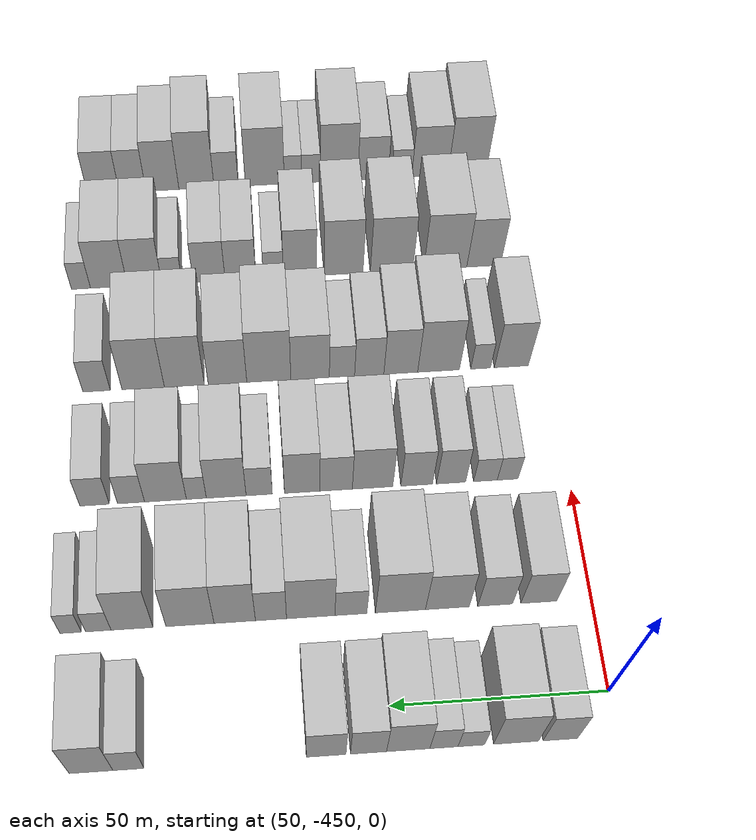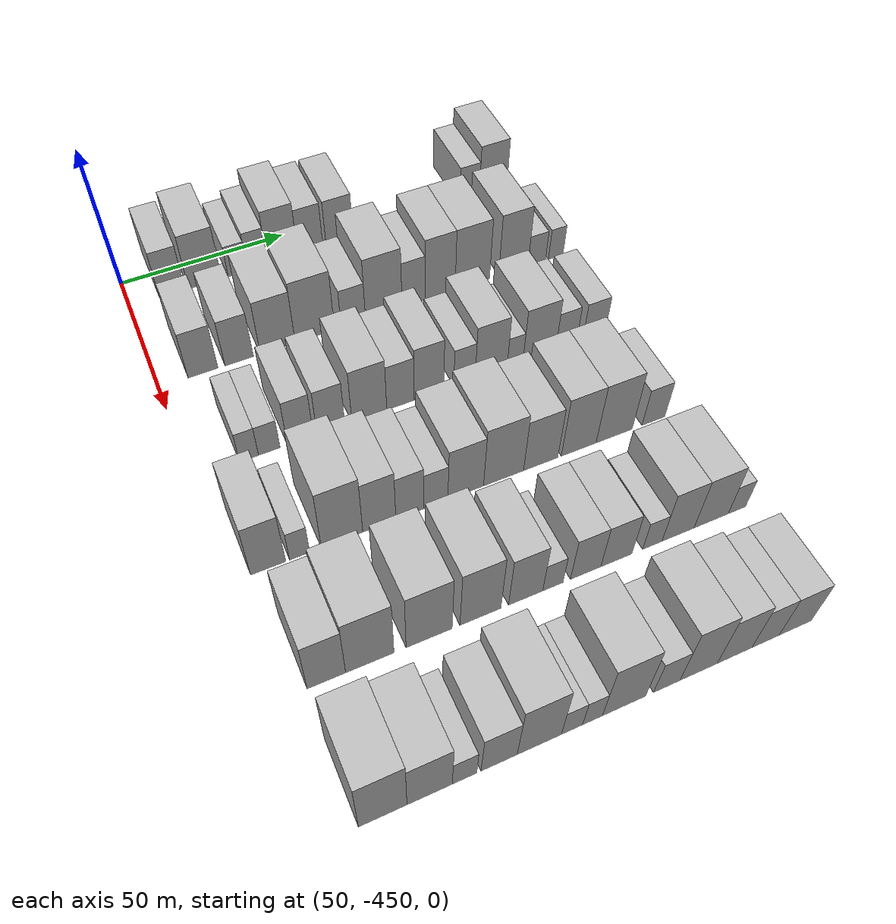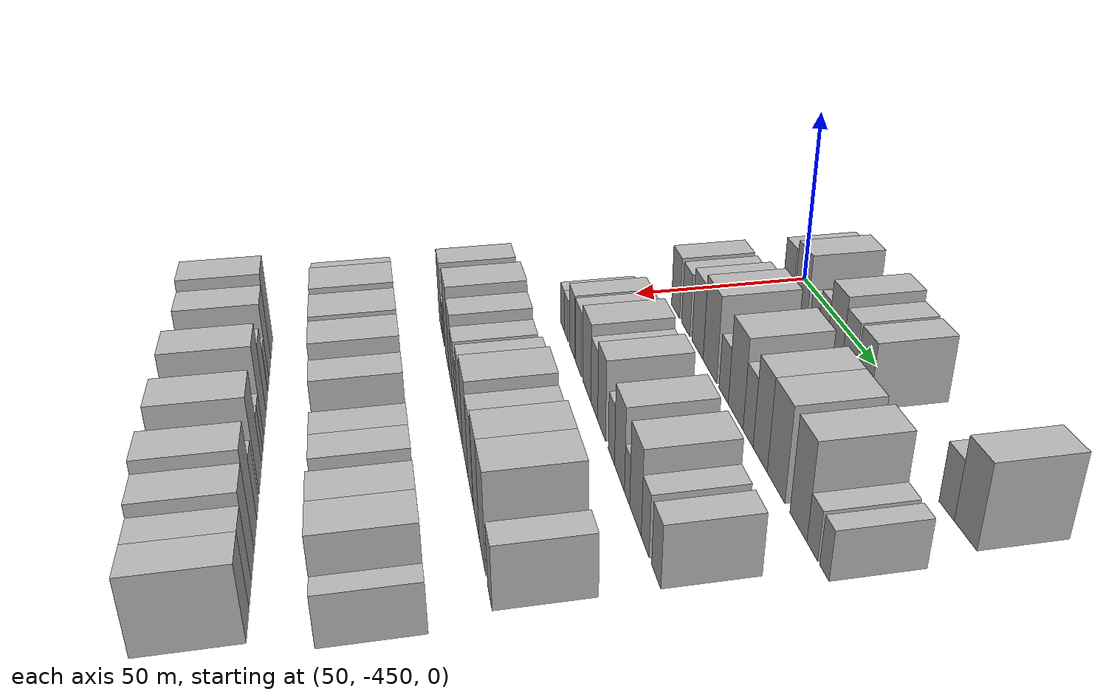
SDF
<sdf version="1.6">
 <world name="default">
  <model name="building_14">
   <static>1</static>
   <pose>50.0000 -437.2513 0 0.000000 0.000000 0.000000</pose>
   <link name="link">
    <pose>0 0 9.00 0 0 0</pose>
    <collision name="collision"><geometry><box><size>20.0000 7.7527 18.0000</size></box></geometry></collision>
    <visual name="visual">
     <cast_shadows>0</cast_shadows>
     <geometry><box><size>20.0000 7.7527 18.0000</size></box></geometry>
     <material>
      <script>
       <uri>model://HANNAS_wall/materials/scripts</uri>
       <uri>model://HANNAS_wall/materials/textures</uri>
       <name>vrc/HANNAS_wall</name>
      </script>
     </material>
    </visual>
   </link>
  </model>
  <model name="building_15">
   <static>1</static>
   <pose>50.0000 -427.3314 0 0.000000 0.000000 0.000000</pose>
   <link name="link">
    <pose>0 0 10.50 0 0 0</pose>
    <collision name="collision"><geometry><box><size>20.0000 10.0871 21.0000</size></box></geometry></collision>
    <visual name="visual">
     <cast_shadows>0</cast_shadows>
     <geometry><box><size>20.0000 10.0871 21.0000</size></box></geometry>
     <material>
      <script>
       <uri>model://HANNAS_wall/materials/scripts</uri>
       <uri>model://HANNAS_wall/materials/textures</uri>
       <name>vrc/HANNAS_wall</name>
      </script>
     </material>
    </visual>
   </link>
  </model>
  <model name="building_16">
   <static>1</static>
   <pose>50.0000 -417.3152 0 0.000000 0.000000 0.000000</pose>
   <link name="link">
    <pose>0 0 6.00 0 0 0</pose>
    <collision name="collision"><geometry><box><size>20.0000 5.9452 12.0000</size></box></geometry></collision>
    <visual name="visual">
     <cast_shadows>0</cast_shadows>
     <geometry><box><size>20.0000 5.9452 12.0000</size></box></geometry>
     <material>
      <script>
       <uri>model://HANNAS_wall/materials/scripts</uri>
       <uri>model://HANNAS_wall/materials/textures</uri>
       <name>vrc/HANNAS_wall</name>
      </script>
     </material>
    </visual>
   </link>
  </model>
  <model name="building_17">
   <static>1</static>
   <pose>50.0000 -411.2061 0 0.000000 0.000000 0.000000</pose>
   <link name="link">
    <pose>0 0 7.50 0 0 0</pose>
    <collision name="collision"><geometry><box><size>20.0000 6.2730 15.0000</size></box></geometry></collision>
    <visual name="visual">
     <cast_shadows>0</cast_shadows>
     <geometry><box><size>20.0000 6.2730 15.0000</size></box></geometry>
     <material>
      <script>
       <uri>model://HANNAS_wall/materials/scripts</uri>
       <uri>model://HANNAS_wall/materials/textures</uri>
       <name>vrc/HANNAS_wall</name>
      </script>
     </material>
    </visual>
   </link>
  </model>
  <model name="building_18">
   <static>1</static>
   <pose>50.0000 -403.2545 0 0.000000 0.000000 0.000000</pose>
   <link name="link">
    <pose>0 0 10.50 0 0 0</pose>
    <collision name="collision"><geometry><box><size>20.0000 9.6303 21.0000</size></box></geometry></collision>
    <visual name="visual">
     <cast_shadows>0</cast_shadows>
     <geometry><box><size>20.0000 9.6303 21.0000</size></box></geometry>
     <material>
      <script>
       <uri>model://HANNAS_wall/materials/scripts</uri>
       <uri>model://HANNAS_wall/materials/textures</uri>
       <name>vrc/HANNAS_wall</name>
      </script>
     </material>
    </visual>
   </link>
  </model>
  <model name="building_19">
   <static>1</static>
   <pose>50.0000 -394.4292 0 0.000000 0.000000 0.000000</pose>
   <link name="link">
    <pose>0 0 9.00 0 0 0</pose>
    <collision name="collision"><geometry><box><size>20.0000 8.0204 18.0000</size></box></geometry></collision>
    <visual name="visual">
     <cast_shadows>0</cast_shadows>
     <geometry><box><size>20.0000 8.0204 18.0000</size></box></geometry>
     <material>
      <script>
       <uri>model://HANNAS_wall/materials/scripts</uri>
       <uri>model://HANNAS_wall/materials/textures</uri>
       <name>vrc/HANNAS_wall</name>
      </script>
     </material>
    </visual>
   </link>
  </model>
  <model name="building_20">
   <static>1</static>
   <pose>50.0000 -385.0337 0 0.000000 0.000000 0.000000</pose>
   <link name="link">
    <pose>0 0 9.00 0 0 0</pose>
    <collision name="collision"><geometry><box><size>20.0000 8.7706 18.0000</size></box></geometry></collision>
    <visual name="visual">
     <cast_shadows>0</cast_shadows>
     <geometry><box><size>20.0000 8.7706 18.0000</size></box></geometry>
     <material>
      <script>
       <uri>model://HANNAS_wall/materials/scripts</uri>
       <uri>model://HANNAS_wall/materials/textures</uri>
       <name>vrc/HANNAS_wall</name>
      </script>
     </material>
    </visual>
   </link>
  </model>
  <model name="building_21">
   <static>1</static>
   <pose>50.0000 -341.4658 0 0.000000 0.000000 0.000000</pose>
   <link name="link">
    <pose>0 0 7.50 0 0 0</pose>
    <collision name="collision"><geometry><box><size>20.0000 6.7884 15.0000</size></box></geometry></collision>
    <visual name="visual">
     <cast_shadows>0</cast_shadows>
     <geometry><box><size>20.0000 6.7884 15.0000</size></box></geometry>
     <material>
      <script>
       <uri>model://HANNAS_wall/materials/scripts</uri>
       <uri>model://HANNAS_wall/materials/textures</uri>
       <name>vrc/HANNAS_wall</name>
      </script>
     </material>
    </visual>
   </link>
  </model>
  <model name="building_22">
   <static>1</static>
   <pose>50.0000 -333.2770 0 0.000000 0.000000 0.000000</pose>
   <link name="link">
    <pose>0 0 10.50 0 0 0</pose>
    <collision name="collision"><geometry><box><size>20.0000 9.5892 21.0000</size></box></geometry></collision>
    <visual name="visual">
     <cast_shadows>0</cast_shadows>
     <geometry><box><size>20.0000 9.5892 21.0000</size></box></geometry>
     <material>
      <script>
       <uri>model://HANNAS_wall/materials/scripts</uri>
       <uri>model://HANNAS_wall/materials/textures</uri>
       <name>vrc/HANNAS_wall</name>
      </script>
     </material>
    </visual>
   </link>
  </model>
  <model name="building_133">
   <static>1</static>
   <pose>82.0000 -437.4815 0 0.000000 0.000000 0.000000</pose>
   <link name="link">
    <pose>0 0 9.00 0 0 0</pose>
    <collision name="collision"><geometry><box><size>20.0000 8.5158 18.0000</size></box></geometry></collision>
    <visual name="visual">
     <cast_shadows>0</cast_shadows>
     <geometry><box><size>20.0000 8.5158 18.0000</size></box></geometry>
     <material>
      <script>
       <uri>model://HANNAS_wall/materials/scripts</uri>
       <uri>model://HANNAS_wall/materials/textures</uri>
       <name>vrc/HANNAS_wall</name>
      </script>
     </material>
    </visual>
   </link>
  </model>
  <model name="building_134">
   <static>1</static>
   <pose>82.0000 -427.1105 0 0.000000 0.000000 0.000000</pose>
   <link name="link">
    <pose>0 0 9.00 0 0 0</pose>
    <collision name="collision"><geometry><box><size>20.0000 8.2260 18.0000</size></box></geometry></collision>
    <visual name="visual">
     <cast_shadows>0</cast_shadows>
     <geometry><box><size>20.0000 8.2260 18.0000</size></box></geometry>
     <material>
      <script>
       <uri>model://HANNAS_wall/materials/scripts</uri>
       <uri>model://HANNAS_wall/materials/textures</uri>
       <name>vrc/HANNAS_wall</name>
      </script>
     </material>
    </visual>
   </link>
  </model>
  <model name="building_135">
   <static>1</static>
   <pose>82.0000 -415.8375 0 0.000000 0.000000 0.000000</pose>
   <link name="link">
    <pose>0 0 10.50 0 0 0</pose>
    <collision name="collision"><geometry><box><size>20.0000 10.3200 21.0000</size></box></geometry></collision>
    <visual name="visual">
     <cast_shadows>0</cast_shadows>
     <geometry><box><size>20.0000 10.3200 21.0000</size></box></geometry>
     <material>
      <script>
       <uri>model://HANNAS_wall/materials/scripts</uri>
       <uri>model://HANNAS_wall/materials/textures</uri>
       <name>vrc/HANNAS_wall</name>
      </script>
     </material>
    </visual>
   </link>
  </model>
  <model name="building_136">
   <static>1</static>
   <pose>82.0000 -404.7858 0 0.000000 0.000000 0.000000</pose>
   <link name="link">
    <pose>0 0 12.00 0 0 0</pose>
    <collision name="collision"><geometry><box><size>20.0000 11.7835 24.0000</size></box></geometry></collision>
    <visual name="visual">
     <cast_shadows>0</cast_shadows>
     <geometry><box><size>20.0000 11.7835 24.0000</size></box></geometry>
     <material>
      <script>
       <uri>model://HANNAS_wall/materials/scripts</uri>
       <uri>model://HANNAS_wall/materials/textures</uri>
       <name>vrc/HANNAS_wall</name>
      </script>
     </material>
    </visual>
   </link>
  </model>
  <model name="building_137">
   <static>1</static>
   <pose>82.0000 -393.1523 0 0.000000 0.000000 0.000000</pose>
   <link name="link">
    <pose>0 0 7.50 0 0 0</pose>
    <collision name="collision"><geometry><box><size>20.0000 7.4835 15.0000</size></box></geometry></collision>
    <visual name="visual">
     <cast_shadows>0</cast_shadows>
     <geometry><box><size>20.0000 7.4835 15.0000</size></box></geometry>
     <material>
      <script>
       <uri>model://HANNAS_wall/materials/scripts</uri>
       <uri>model://HANNAS_wall/materials/textures</uri>
       <name>vrc/HANNAS_wall</name>
      </script>
     </material>
    </visual>
   </link>
  </model>
  <model name="building_138">
   <static>1</static>
   <pose>82.0000 -383.7502 0 0.000000 0.000000 0.000000</pose>
   <link name="link">
    <pose>0 0 12.00 0 0 0</pose>
    <collision name="collision"><geometry><box><size>20.0000 11.3207 24.0000</size></box></geometry></collision>
    <visual name="visual">
     <cast_shadows>0</cast_shadows>
     <geometry><box><size>20.0000 11.3207 24.0000</size></box></geometry>
     <material>
      <script>
       <uri>model://HANNAS_wall/materials/scripts</uri>
       <uri>model://HANNAS_wall/materials/textures</uri>
       <name>vrc/HANNAS_wall</name>
      </script>
     </material>
    </visual>
   </link>
  </model>
  <model name="building_139">
   <static>1</static>
   <pose>82.0000 -374.4624 0 0.000000 0.000000 0.000000</pose>
   <link name="link">
    <pose>0 0 9.00 0 0 0</pose>
    <collision name="collision"><geometry><box><size>20.0000 7.2547 18.0000</size></box></geometry></collision>
    <visual name="visual">
     <cast_shadows>0</cast_shadows>
     <geometry><box><size>20.0000 7.2547 18.0000</size></box></geometry>
     <material>
      <script>
       <uri>model://HANNAS_wall/materials/scripts</uri>
       <uri>model://HANNAS_wall/materials/textures</uri>
       <name>vrc/HANNAS_wall</name>
      </script>
     </material>
    </visual>
   </link>
  </model>
  <model name="building_140">
   <static>1</static>
   <pose>82.0000 -366.0152 0 0.000000 0.000000 0.000000</pose>
   <link name="link">
    <pose>0 0 12.00 0 0 0</pose>
    <collision name="collision"><geometry><box><size>20.0000 9.6397 24.0000</size></box></geometry></collision>
    <visual name="visual">
     <cast_shadows>0</cast_shadows>
     <geometry><box><size>20.0000 9.6397 24.0000</size></box></geometry>
     <material>
      <script>
       <uri>model://HANNAS_wall/materials/scripts</uri>
       <uri>model://HANNAS_wall/materials/textures</uri>
       <name>vrc/HANNAS_wall</name>
      </script>
     </material>
    </visual>
   </link>
  </model>
  <model name="building_141">
   <static>1</static>
   <pose>82.0000 -355.6054 0 0.000000 0.000000 0.000000</pose>
   <link name="link">
    <pose>0 0 12.00 0 0 0</pose>
    <collision name="collision"><geometry><box><size>20.0000 11.1799 24.0000</size></box></geometry></collision>
    <visual name="visual">
     <cast_shadows>0</cast_shadows>
     <geometry><box><size>20.0000 11.1799 24.0000</size></box></geometry>
     <material>
      <script>
       <uri>model://HANNAS_wall/materials/scripts</uri>
       <uri>model://HANNAS_wall/materials/textures</uri>
       <name>vrc/HANNAS_wall</name>
      </script>
     </material>
    </visual>
   </link>
  </model>
  <model name="building_142">
   <static>1</static>
   <pose>82.0000 -342.1460 0 0.000000 0.000000 0.000000</pose>
   <link name="link">
    <pose>0 0 12.00 0 0 0</pose>
    <collision name="collision"><geometry><box><size>20.0000 9.7389 24.0000</size></box></geometry></collision>
    <visual name="visual">
     <cast_shadows>0</cast_shadows>
     <geometry><box><size>20.0000 9.7389 24.0000</size></box></geometry>
     <material>
      <script>
       <uri>model://HANNAS_wall/materials/scripts</uri>
       <uri>model://HANNAS_wall/materials/textures</uri>
       <name>vrc/HANNAS_wall</name>
      </script>
     </material>
    </visual>
   </link>
  </model>
  <model name="building_143">
   <static>1</static>
   <pose>82.0000 -334.3312 0 0.000000 0.000000 0.000000</pose>
   <link name="link">
    <pose>0 0 6.00 0 0 0</pose>
    <collision name="collision"><geometry><box><size>20.0000 5.8907 12.0000</size></box></geometry></collision>
    <visual name="visual">
     <cast_shadows>0</cast_shadows>
     <geometry><box><size>20.0000 5.8907 12.0000</size></box></geometry>
     <material>
      <script>
       <uri>model://HANNAS_wall/materials/scripts</uri>
       <uri>model://HANNAS_wall/materials/textures</uri>
       <name>vrc/HANNAS_wall</name>
      </script>
     </material>
    </visual>
   </link>
  </model>
  <model name="building_144">
   <static>1</static>
   <pose>82.0000 -327.9210 0 0.000000 0.000000 0.000000</pose>
   <link name="link">
    <pose>0 0 6.00 0 0 0</pose>
    <collision name="collision"><geometry><box><size>20.0000 4.9296 12.0000</size></box></geometry></collision>
    <visual name="visual">
     <cast_shadows>0</cast_shadows>
     <geometry><box><size>20.0000 4.9296 12.0000</size></box></geometry>
     <material>
      <script>
       <uri>model://HANNAS_wall/materials/scripts</uri>
       <uri>model://HANNAS_wall/materials/textures</uri>
       <name>vrc/HANNAS_wall</name>
      </script>
     </material>
    </visual>
   </link>
  </model>
  <model name="building_248">
   <static>1</static>
   <pose>114.0000 -434.7066 0 0.000000 0.000000 0.000000</pose>
   <link name="link">
    <pose>0 0 6.00 0 0 0</pose>
    <collision name="collision"><geometry><box><size>20.0000 5.1721 12.0000</size></box></geometry></collision>
    <visual name="visual">
     <cast_shadows>0</cast_shadows>
     <geometry><box><size>20.0000 5.1721 12.0000</size></box></geometry>
     <material>
      <script>
       <uri>model://HANNAS_wall/materials/scripts</uri>
       <uri>model://HANNAS_wall/materials/textures</uri>
       <name>vrc/HANNAS_wall</name>
      </script>
     </material>
    </visual>
   </link>
  </model>
  <model name="building_249">
   <static>1</static>
   <pose>114.0000 -429.1706 0 0.000000 0.000000 0.000000</pose>
   <link name="link">
    <pose>0 0 6.00 0 0 0</pose>
    <collision name="collision"><geometry><box><size>20.0000 5.8999 12.0000</size></box></geometry></collision>
    <visual name="visual">
     <cast_shadows>0</cast_shadows>
     <geometry><box><size>20.0000 5.8999 12.0000</size></box></geometry>
     <material>
      <script>
       <uri>model://HANNAS_wall/materials/scripts</uri>
       <uri>model://HANNAS_wall/materials/textures</uri>
       <name>vrc/HANNAS_wall</name>
      </script>
     </material>
    </visual>
   </link>
  </model>
  <model name="building_250">
   <static>1</static>
   <pose>114.0000 -420.6093 0 0.000000 0.000000 0.000000</pose>
   <link name="link">
    <pose>0 0 9.00 0 0 0</pose>
    <collision name="collision"><geometry><box><size>20.0000 7.2228 18.0000</size></box></geometry></collision>
    <visual name="visual">
     <cast_shadows>0</cast_shadows>
     <geometry><box><size>20.0000 7.2228 18.0000</size></box></geometry>
     <material>
      <script>
       <uri>model://HANNAS_wall/materials/scripts</uri>
       <uri>model://HANNAS_wall/materials/textures</uri>
       <name>vrc/HANNAS_wall</name>
      </script>
     </material>
    </visual>
   </link>
  </model>
  <model name="building_251">
   <static>1</static>
   <pose>114.0000 -412.0750 0 0.000000 0.000000 0.000000</pose>
   <link name="link">
    <pose>0 0 9.00 0 0 0</pose>
    <collision name="collision"><geometry><box><size>20.0000 7.8458 18.0000</size></box></geometry></collision>
    <visual name="visual">
     <cast_shadows>0</cast_shadows>
     <geometry><box><size>20.0000 7.8458 18.0000</size></box></geometry>
     <material>
      <script>
       <uri>model://HANNAS_wall/materials/scripts</uri>
       <uri>model://HANNAS_wall/materials/textures</uri>
       <name>vrc/HANNAS_wall</name>
      </script>
     </material>
    </visual>
   </link>
  </model>
  <model name="building_252">
   <static>1</static>
   <pose>114.0000 -401.1496 0 0.000000 0.000000 0.000000</pose>
   <link name="link">
    <pose>0 0 10.50 0 0 0</pose>
    <collision name="collision"><geometry><box><size>20.0000 10.0049 21.0000</size></box></geometry></collision>
    <visual name="visual">
     <cast_shadows>0</cast_shadows>
     <geometry><box><size>20.0000 10.0049 21.0000</size></box></geometry>
     <material>
      <script>
       <uri>model://HANNAS_wall/materials/scripts</uri>
       <uri>model://HANNAS_wall/materials/textures</uri>
       <name>vrc/HANNAS_wall</name>
      </script>
     </material>
    </visual>
   </link>
  </model>
  <model name="building_253">
   <static>1</static>
   <pose>114.0000 -392.1414 0 0.000000 0.000000 0.000000</pose>
   <link name="link">
    <pose>0 0 9.00 0 0 0</pose>
    <collision name="collision"><geometry><box><size>20.0000 8.0114 18.0000</size></box></geometry></collision>
    <visual name="visual">
     <cast_shadows>0</cast_shadows>
     <geometry><box><size>20.0000 8.0114 18.0000</size></box></geometry>
     <material>
      <script>
       <uri>model://HANNAS_wall/materials/scripts</uri>
       <uri>model://HANNAS_wall/materials/textures</uri>
       <name>vrc/HANNAS_wall</name>
      </script>
     </material>
    </visual>
   </link>
  </model>
  <model name="building_254">
   <static>1</static>
   <pose>114.0000 -383.7779 0 0.000000 0.000000 0.000000</pose>
   <link name="link">
    <pose>0 0 10.50 0 0 0</pose>
    <collision name="collision"><geometry><box><size>20.0000 8.7156 21.0000</size></box></geometry></collision>
    <visual name="visual">
     <cast_shadows>0</cast_shadows>
     <geometry><box><size>20.0000 8.7156 21.0000</size></box></geometry>
     <material>
      <script>
       <uri>model://HANNAS_wall/materials/scripts</uri>
       <uri>model://HANNAS_wall/materials/textures</uri>
       <name>vrc/HANNAS_wall</name>
      </script>
     </material>
    </visual>
   </link>
  </model>
  <model name="building_255">
   <static>1</static>
   <pose>114.0000 -373.2004 0 0.000000 0.000000 0.000000</pose>
   <link name="link">
    <pose>0 0 7.50 0 0 0</pose>
    <collision name="collision"><geometry><box><size>20.0000 6.4394 15.0000</size></box></geometry></collision>
    <visual name="visual">
     <cast_shadows>0</cast_shadows>
     <geometry><box><size>20.0000 6.4394 15.0000</size></box></geometry>
     <material>
      <script>
       <uri>model://HANNAS_wall/materials/scripts</uri>
       <uri>model://HANNAS_wall/materials/textures</uri>
       <name>vrc/HANNAS_wall</name>
      </script>
     </material>
    </visual>
   </link>
  </model>
  <model name="building_256">
   <static>1</static>
   <pose>114.0000 -365.0993 0 0.000000 0.000000 0.000000</pose>
   <link name="link">
    <pose>0 0 10.50 0 0 0</pose>
    <collision name="collision"><geometry><box><size>20.0000 9.7629 21.0000</size></box></geometry></collision>
    <visual name="visual">
     <cast_shadows>0</cast_shadows>
     <geometry><box><size>20.0000 9.7629 21.0000</size></box></geometry>
     <material>
      <script>
       <uri>model://HANNAS_wall/materials/scripts</uri>
       <uri>model://HANNAS_wall/materials/textures</uri>
       <name>vrc/HANNAS_wall</name>
      </script>
     </material>
    </visual>
   </link>
  </model>
  <model name="building_257">
   <static>1</static>
   <pose>114.0000 -357.7712 0 0.000000 0.000000 0.000000</pose>
   <link name="link">
    <pose>0 0 6.00 0 0 0</pose>
    <collision name="collision"><geometry><box><size>20.0000 4.8933 12.0000</size></box></geometry></collision>
    <visual name="visual">
     <cast_shadows>0</cast_shadows>
     <geometry><box><size>20.0000 4.8933 12.0000</size></box></geometry>
     <material>
      <script>
       <uri>model://HANNAS_wall/materials/scripts</uri>
       <uri>model://HANNAS_wall/materials/textures</uri>
       <name>vrc/HANNAS_wall</name>
      </script>
     </material>
    </visual>
   </link>
  </model>
  <model name="building_258">
   <static>1</static>
   <pose>114.0000 -350.2074 0 0.000000 0.000000 0.000000</pose>
   <link name="link">
    <pose>0 0 10.50 0 0 0</pose>
    <collision name="collision"><geometry><box><size>20.0000 10.2344 21.0000</size></box></geometry></collision>
    <visual name="visual">
     <cast_shadows>0</cast_shadows>
     <geometry><box><size>20.0000 10.2344 21.0000</size></box></geometry>
     <material>
      <script>
       <uri>model://HANNAS_wall/materials/scripts</uri>
       <uri>model://HANNAS_wall/materials/textures</uri>
       <name>vrc/HANNAS_wall</name>
      </script>
     </material>
    </visual>
   </link>
  </model>
  <model name="building_259">
   <static>1</static>
   <pose>114.0000 -341.7911 0 0.000000 0.000000 0.000000</pose>
   <link name="link">
    <pose>0 0 7.50 0 0 0</pose>
    <collision name="collision"><geometry><box><size>20.0000 6.5981 15.0000</size></box></geometry></collision>
    <visual name="visual">
     <cast_shadows>0</cast_shadows>
     <geometry><box><size>20.0000 6.5981 15.0000</size></box></geometry>
     <material>
      <script>
       <uri>model://HANNAS_wall/materials/scripts</uri>
       <uri>model://HANNAS_wall/materials/textures</uri>
       <name>vrc/HANNAS_wall</name>
      </script>
     </material>
    </visual>
   </link>
  </model>
  <model name="building_260">
   <static>1</static>
   <pose>114.0000 -332.8927 0 0.000000 0.000000 0.000000</pose>
   <link name="link">
    <pose>0 0 7.50 0 0 0</pose>
    <collision name="collision"><geometry><box><size>20.0000 7.1989 15.0000</size></box></geometry></collision>
    <visual name="visual">
     <cast_shadows>0</cast_shadows>
     <geometry><box><size>20.0000 7.1989 15.0000</size></box></geometry>
     <material>
      <script>
       <uri>model://HANNAS_wall/materials/scripts</uri>
       <uri>model://HANNAS_wall/materials/textures</uri>
       <name>vrc/HANNAS_wall</name>
      </script>
     </material>
    </visual>
   </link>
  </model>
  <model name="building_363">
   <static>1</static>
   <pose>146.0000 -440.2955 0 0.000000 0.000000 0.000000</pose>
   <link name="link">
    <pose>0 0 10.50 0 0 0</pose>
    <collision name="collision"><geometry><box><size>20.0000 8.8923 21.0000</size></box></geometry></collision>
    <visual name="visual">
     <cast_shadows>0</cast_shadows>
     <geometry><box><size>20.0000 8.8923 21.0000</size></box></geometry>
     <material>
      <script>
       <uri>model://HANNAS_wall/materials/scripts</uri>
       <uri>model://HANNAS_wall/materials/textures</uri>
       <name>vrc/HANNAS_wall</name>
      </script>
     </material>
    </visual>
   </link>
  </model>
  <model name="building_364">
   <static>1</static>
   <pose>146.0000 -432.2739 0 0.000000 0.000000 0.000000</pose>
   <link name="link">
    <pose>0 0 6.00 0 0 0</pose>
    <collision name="collision"><geometry><box><size>20.0000 5.1509 12.0000</size></box></geometry></collision>
    <visual name="visual">
     <cast_shadows>0</cast_shadows>
     <geometry><box><size>20.0000 5.1509 12.0000</size></box></geometry>
     <material>
      <script>
       <uri>model://HANNAS_wall/materials/scripts</uri>
       <uri>model://HANNAS_wall/materials/textures</uri>
       <name>vrc/HANNAS_wall</name>
      </script>
     </material>
    </visual>
   </link>
  </model>
  <model name="building_365">
   <static>1</static>
   <pose>146.0000 -421.2610 0 0.000000 0.000000 0.000000</pose>
   <link name="link">
    <pose>0 0 12.00 0 0 0</pose>
    <collision name="collision"><geometry><box><size>20.0000 10.8750 24.0000</size></box></geometry></collision>
    <visual name="visual">
     <cast_shadows>0</cast_shadows>
     <geometry><box><size>20.0000 10.8750 24.0000</size></box></geometry>
     <material>
      <script>
       <uri>model://HANNAS_wall/materials/scripts</uri>
       <uri>model://HANNAS_wall/materials/textures</uri>
       <name>vrc/HANNAS_wall</name>
      </script>
     </material>
    </visual>
   </link>
  </model>
  <model name="building_366">
   <static>1</static>
   <pose>146.0000 -411.4115 0 0.000000 0.000000 0.000000</pose>
   <link name="link">
    <pose>0 0 10.50 0 0 0</pose>
    <collision name="collision"><geometry><box><size>20.0000 8.8239 21.0000</size></box></geometry></collision>
    <visual name="visual">
     <cast_shadows>0</cast_shadows>
     <geometry><box><size>20.0000 8.8239 21.0000</size></box></geometry>
     <material>
      <script>
       <uri>model://HANNAS_wall/materials/scripts</uri>
       <uri>model://HANNAS_wall/materials/textures</uri>
       <name>vrc/HANNAS_wall</name>
      </script>
     </material>
    </visual>
   </link>
  </model>
  <model name="building_367">
   <static>1</static>
   <pose>146.0000 -403.1995 0 0.000000 0.000000 0.000000</pose>
   <link name="link">
    <pose>0 0 9.00 0 0 0</pose>
    <collision name="collision"><geometry><box><size>20.0000 7.6000 18.0000</size></box></geometry></collision>
    <visual name="visual">
     <cast_shadows>0</cast_shadows>
     <geometry><box><size>20.0000 7.6000 18.0000</size></box></geometry>
     <material>
      <script>
       <uri>model://HANNAS_wall/materials/scripts</uri>
       <uri>model://HANNAS_wall/materials/textures</uri>
       <name>vrc/HANNAS_wall</name>
      </script>
     </material>
    </visual>
   </link>
  </model>
  <model name="building_368">
   <static>1</static>
   <pose>146.0000 -396.1126 0 0.000000 0.000000 0.000000</pose>
   <link name="link">
    <pose>0 0 7.50 0 0 0</pose>
    <collision name="collision"><geometry><box><size>20.0000 6.5739 15.0000</size></box></geometry></collision>
    <visual name="visual">
     <cast_shadows>0</cast_shadows>
     <geometry><box><size>20.0000 6.5739 15.0000</size></box></geometry>
     <material>
      <script>
       <uri>model://HANNAS_wall/materials/scripts</uri>
       <uri>model://HANNAS_wall/materials/textures</uri>
       <name>vrc/HANNAS_wall</name>
      </script>
     </material>
    </visual>
   </link>
  </model>
  <model name="building_369">
   <static>1</static>
   <pose>146.0000 -387.8350 0 0.000000 0.000000 0.000000</pose>
   <link name="link">
    <pose>0 0 10.50 0 0 0</pose>
    <collision name="collision"><geometry><box><size>20.0000 9.9812 21.0000</size></box></geometry></collision>
    <visual name="visual">
     <cast_shadows>0</cast_shadows>
     <geometry><box><size>20.0000 9.9812 21.0000</size></box></geometry>
     <material>
      <script>
       <uri>model://HANNAS_wall/materials/scripts</uri>
       <uri>model://HANNAS_wall/materials/textures</uri>
       <name>vrc/HANNAS_wall</name>
      </script>
     </material>
    </visual>
   </link>
  </model>
  <model name="building_370">
   <static>1</static>
   <pose>146.0000 -377.1566 0 0.000000 0.000000 0.000000</pose>
   <link name="link">
    <pose>0 0 12.00 0 0 0</pose>
    <collision name="collision"><geometry><box><size>20.0000 11.3758 24.0000</size></box></geometry></collision>
    <visual name="visual">
     <cast_shadows>0</cast_shadows>
     <geometry><box><size>20.0000 11.3758 24.0000</size></box></geometry>
     <material>
      <script>
       <uri>model://HANNAS_wall/materials/scripts</uri>
       <uri>model://HANNAS_wall/materials/textures</uri>
       <name>vrc/HANNAS_wall</name>
      </script>
     </material>
    </visual>
   </link>
  </model>
  <model name="building_371">
   <static>1</static>
   <pose>146.0000 -366.4949 0 0.000000 0.000000 0.000000</pose>
   <link name="link">
    <pose>0 0 10.50 0 0 0</pose>
    <collision name="collision"><geometry><box><size>20.0000 9.9475 21.0000</size></box></geometry></collision>
    <visual name="visual">
     <cast_shadows>0</cast_shadows>
     <geometry><box><size>20.0000 9.9475 21.0000</size></box></geometry>
     <material>
      <script>
       <uri>model://HANNAS_wall/materials/scripts</uri>
       <uri>model://HANNAS_wall/materials/textures</uri>
       <name>vrc/HANNAS_wall</name>
      </script>
     </material>
    </visual>
   </link>
  </model>
  <model name="building_372">
   <static>1</static>
   <pose>146.0000 -355.3653 0 0.000000 0.000000 0.000000</pose>
   <link name="link">
    <pose>0 0 12.00 0 0 0</pose>
    <collision name="collision"><geometry><box><size>20.0000 10.3118 24.0000</size></box></geometry></collision>
    <visual name="visual">
     <cast_shadows>0</cast_shadows>
     <geometry><box><size>20.0000 10.3118 24.0000</size></box></geometry>
     <material>
      <script>
       <uri>model://HANNAS_wall/materials/scripts</uri>
       <uri>model://HANNAS_wall/materials/textures</uri>
       <name>vrc/HANNAS_wall</name>
      </script>
     </material>
    </visual>
   </link>
  </model>
  <model name="building_373">
   <static>1</static>
   <pose>146.0000 -344.7600 0 0.000000 0.000000 0.000000</pose>
   <link name="link">
    <pose>0 0 12.00 0 0 0</pose>
    <collision name="collision"><geometry><box><size>20.0000 10.8988 24.0000</size></box></geometry></collision>
    <visual name="visual">
     <cast_shadows>0</cast_shadows>
     <geometry><box><size>20.0000 10.8988 24.0000</size></box></geometry>
     <material>
      <script>
       <uri>model://HANNAS_wall/materials/scripts</uri>
       <uri>model://HANNAS_wall/materials/textures</uri>
       <name>vrc/HANNAS_wall</name>
      </script>
     </material>
    </visual>
   </link>
  </model>
  <model name="building_374">
   <static>1</static>
   <pose>146.0000 -332.8020 0 0.000000 0.000000 0.000000</pose>
   <link name="link">
    <pose>0 0 7.50 0 0 0</pose>
    <collision name="collision"><geometry><box><size>20.0000 7.0172 15.0000</size></box></geometry></collision>
    <visual name="visual">
     <cast_shadows>0</cast_shadows>
     <geometry><box><size>20.0000 7.0172 15.0000</size></box></geometry>
     <material>
      <script>
       <uri>model://HANNAS_wall/materials/scripts</uri>
       <uri>model://HANNAS_wall/materials/textures</uri>
       <name>vrc/HANNAS_wall</name>
      </script>
     </material>
    </visual>
   </link>
  </model>
  <model name="building_488">
   <static>1</static>
   <pose>178.0000 -437.3694 0 0.000000 0.000000 0.000000</pose>
   <link name="link">
    <pose>0 0 10.50 0 0 0</pose>
    <collision name="collision"><geometry><box><size>20.0000 9.2313 21.0000</size></box></geometry></collision>
    <visual name="visual">
     <cast_shadows>0</cast_shadows>
     <geometry><box><size>20.0000 9.2313 21.0000</size></box></geometry>
     <material>
      <script>
       <uri>model://HANNAS_wall/materials/scripts</uri>
       <uri>model://HANNAS_wall/materials/textures</uri>
       <name>vrc/HANNAS_wall</name>
      </script>
     </material>
    </visual>
   </link>
  </model>
  <model name="building_489">
   <static>1</static>
   <pose>178.0000 -426.8522 0 0.000000 0.000000 0.000000</pose>
   <link name="link">
    <pose>0 0 12.00 0 0 0</pose>
    <collision name="collision"><geometry><box><size>20.0000 11.8031 24.0000</size></box></geometry></collision>
    <visual name="visual">
     <cast_shadows>0</cast_shadows>
     <geometry><box><size>20.0000 11.8031 24.0000</size></box></geometry>
     <material>
      <script>
       <uri>model://HANNAS_wall/materials/scripts</uri>
       <uri>model://HANNAS_wall/materials/textures</uri>
       <name>vrc/HANNAS_wall</name>
      </script>
     </material>
    </visual>
   </link>
  </model>
  <model name="building_490">
   <static>1</static>
   <pose>178.0000 -412.1583 0 0.000000 0.000000 0.000000</pose>
   <link name="link">
    <pose>0 0 12.00 0 0 0</pose>
    <collision name="collision"><geometry><box><size>20.0000 11.5849 24.0000</size></box></geometry></collision>
    <visual name="visual">
     <cast_shadows>0</cast_shadows>
     <geometry><box><size>20.0000 11.5849 24.0000</size></box></geometry>
     <material>
      <script>
       <uri>model://HANNAS_wall/materials/scripts</uri>
       <uri>model://HANNAS_wall/materials/textures</uri>
       <name>vrc/HANNAS_wall</name>
      </script>
     </material>
    </visual>
   </link>
  </model>
  <model name="building_491">
   <static>1</static>
   <pose>178.0000 -399.0704 0 0.000000 0.000000 0.000000</pose>
   <link name="link">
    <pose>0 0 12.00 0 0 0</pose>
    <collision name="collision"><geometry><box><size>20.0000 10.5908 24.0000</size></box></geometry></collision>
    <visual name="visual">
     <cast_shadows>0</cast_shadows>
     <geometry><box><size>20.0000 10.5908 24.0000</size></box></geometry>
     <material>
      <script>
       <uri>model://HANNAS_wall/materials/scripts</uri>
       <uri>model://HANNAS_wall/materials/textures</uri>
       <name>vrc/HANNAS_wall</name>
      </script>
     </material>
    </visual>
   </link>
  </model>
  <model name="building_492">
   <static>1</static>
   <pose>178.0000 -387.2399 0 0.000000 0.000000 0.000000</pose>
   <link name="link">
    <pose>0 0 10.50 0 0 0</pose>
    <collision name="collision"><geometry><box><size>20.0000 9.0703 21.0000</size></box></geometry></collision>
    <visual name="visual">
     <cast_shadows>0</cast_shadows>
     <geometry><box><size>20.0000 9.0703 21.0000</size></box></geometry>
     <material>
      <script>
       <uri>model://HANNAS_wall/materials/scripts</uri>
       <uri>model://HANNAS_wall/materials/textures</uri>
       <name>vrc/HANNAS_wall</name>
      </script>
     </material>
    </visual>
   </link>
  </model>
  <model name="building_493">
   <static>1</static>
   <pose>178.0000 -379.9896 0 0.000000 0.000000 0.000000</pose>
   <link name="link">
    <pose>0 0 6.00 0 0 0</pose>
    <collision name="collision"><geometry><box><size>20.0000 5.4305 12.0000</size></box></geometry></collision>
    <visual name="visual">
     <cast_shadows>0</cast_shadows>
     <geometry><box><size>20.0000 5.4305 12.0000</size></box></geometry>
     <material>
      <script>
       <uri>model://HANNAS_wall/materials/scripts</uri>
       <uri>model://HANNAS_wall/materials/textures</uri>
       <name>vrc/HANNAS_wall</name>
      </script>
     </material>
    </visual>
   </link>
  </model>
  <model name="building_494">
   <static>1</static>
   <pose>178.0000 -371.1079 0 0.000000 0.000000 0.000000</pose>
   <link name="link">
    <pose>0 0 9.00 0 0 0</pose>
    <collision name="collision"><geometry><box><size>20.0000 8.3329 18.0000</size></box></geometry></collision>
    <visual name="visual">
     <cast_shadows>0</cast_shadows>
     <geometry><box><size>20.0000 8.3329 18.0000</size></box></geometry>
     <material>
      <script>
       <uri>model://HANNAS_wall/materials/scripts</uri>
       <uri>model://HANNAS_wall/materials/textures</uri>
       <name>vrc/HANNAS_wall</name>
      </script>
     </material>
    </visual>
   </link>
  </model>
  <model name="building_495">
   <static>1</static>
   <pose>178.0000 -362.6305 0 0.000000 0.000000 0.000000</pose>
   <link name="link">
    <pose>0 0 9.00 0 0 0</pose>
    <collision name="collision"><geometry><box><size>20.0000 8.6217 18.0000</size></box></geometry></collision>
    <visual name="visual">
     <cast_shadows>0</cast_shadows>
     <geometry><box><size>20.0000 8.6217 18.0000</size></box></geometry>
     <material>
      <script>
       <uri>model://HANNAS_wall/materials/scripts</uri>
       <uri>model://HANNAS_wall/materials/textures</uri>
       <name>vrc/HANNAS_wall</name>
      </script>
     </material>
    </visual>
   </link>
  </model>
  <model name="building_496">
   <static>1</static>
   <pose>178.0000 -352.5813 0 0.000000 0.000000 0.000000</pose>
   <link name="link">
    <pose>0 0 6.00 0 0 0</pose>
    <collision name="collision"><geometry><box><size>20.0000 5.4767 12.0000</size></box></geometry></collision>
    <visual name="visual">
     <cast_shadows>0</cast_shadows>
     <geometry><box><size>20.0000 5.4767 12.0000</size></box></geometry>
     <material>
      <script>
       <uri>model://HANNAS_wall/materials/scripts</uri>
       <uri>model://HANNAS_wall/materials/textures</uri>
       <name>vrc/HANNAS_wall</name>
      </script>
     </material>
    </visual>
   </link>
  </model>
  <model name="building_497">
   <static>1</static>
   <pose>178.0000 -345.2233 0 0.000000 0.000000 0.000000</pose>
   <link name="link">
    <pose>0 0 10.50 0 0 0</pose>
    <collision name="collision"><geometry><box><size>20.0000 9.2393 21.0000</size></box></geometry></collision>
    <visual name="visual">
     <cast_shadows>0</cast_shadows>
     <geometry><box><size>20.0000 9.2393 21.0000</size></box></geometry>
     <material>
      <script>
       <uri>model://HANNAS_wall/materials/scripts</uri>
       <uri>model://HANNAS_wall/materials/textures</uri>
       <name>vrc/HANNAS_wall</name>
      </script>
     </material>
    </visual>
   </link>
  </model>
  <model name="building_498">
   <static>1</static>
   <pose>178.0000 -335.6048 0 0.000000 0.000000 0.000000</pose>
   <link name="link">
    <pose>0 0 10.50 0 0 0</pose>
    <collision name="collision"><geometry><box><size>20.0000 9.9976 21.0000</size></box></geometry></collision>
    <visual name="visual">
     <cast_shadows>0</cast_shadows>
     <geometry><box><size>20.0000 9.9976 21.0000</size></box></geometry>
     <material>
      <script>
       <uri>model://HANNAS_wall/materials/scripts</uri>
       <uri>model://HANNAS_wall/materials/textures</uri>
       <name>vrc/HANNAS_wall</name>
      </script>
     </material>
    </visual>
   </link>
  </model>
  <model name="building_499">
   <static>1</static>
   <pose>178.0000 -328.0425 0 0.000000 0.000000 0.000000</pose>
   <link name="link">
    <pose>0 0 6.00 0 0 0</pose>
    <collision name="collision"><geometry><box><size>20.0000 5.1271 12.0000</size></box></geometry></collision>
    <visual name="visual">
     <cast_shadows>0</cast_shadows>
     <geometry><box><size>20.0000 5.1271 12.0000</size></box></geometry>
     <material>
      <script>
       <uri>model://HANNAS_wall/materials/scripts</uri>
       <uri>model://HANNAS_wall/materials/textures</uri>
       <name>vrc/HANNAS_wall</name>
      </script>
     </material>
    </visual>
   </link>
  </model>
  <model name="building_602">
   <static>1</static>
   <pose>210.0000 -436.9111 0 0.000000 0.000000 0.000000</pose>
   <link name="link">
    <pose>0 0 12.00 0 0 0</pose>
    <collision name="collision"><geometry><box><size>20.0000 10.9111 24.0000</size></box></geometry></collision>
    <visual name="visual">
     <cast_shadows>0</cast_shadows>
     <geometry><box><size>20.0000 10.9111 24.0000</size></box></geometry>
     <material>
      <script>
       <uri>model://HANNAS_wall/materials/scripts</uri>
       <uri>model://HANNAS_wall/materials/textures</uri>
       <name>vrc/HANNAS_wall</name>
      </script>
     </material>
    </visual>
   </link>
  </model>
  <model name="building_603">
   <static>1</static>
   <pose>210.0000 -426.2633 0 0.000000 0.000000 0.000000</pose>
   <link name="link">
    <pose>0 0 10.50 0 0 0</pose>
    <collision name="collision"><geometry><box><size>20.0000 10.3845 21.0000</size></box></geometry></collision>
    <visual name="visual">
     <cast_shadows>0</cast_shadows>
     <geometry><box><size>20.0000 10.3845 21.0000</size></box></geometry>
     <material>
      <script>
       <uri>model://HANNAS_wall/materials/scripts</uri>
       <uri>model://HANNAS_wall/materials/textures</uri>
       <name>vrc/HANNAS_wall</name>
      </script>
     </material>
    </visual>
   </link>
  </model>
  <model name="building_604">
   <static>1</static>
   <pose>210.0000 -418.1985 0 0.000000 0.000000 0.000000</pose>
   <link name="link">
    <pose>0 0 6.00 0 0 0</pose>
    <collision name="collision"><geometry><box><size>20.0000 5.7449 12.0000</size></box></geometry></collision>
    <visual name="visual">
     <cast_shadows>0</cast_shadows>
     <geometry><box><size>20.0000 5.7449 12.0000</size></box></geometry>
     <material>
      <script>
       <uri>model://HANNAS_wall/materials/scripts</uri>
       <uri>model://HANNAS_wall/materials/textures</uri>
       <name>vrc/HANNAS_wall</name>
      </script>
     </material>
    </visual>
   </link>
  </model>
  <model name="building_605">
   <static>1</static>
   <pose>210.0000 -410.0102 0 0.000000 0.000000 0.000000</pose>
   <link name="link">
    <pose>0 0 9.00 0 0 0</pose>
    <collision name="collision"><geometry><box><size>20.0000 8.6317 18.0000</size></box></geometry></collision>
    <visual name="visual">
     <cast_shadows>0</cast_shadows>
     <geometry><box><size>20.0000 8.6317 18.0000</size></box></geometry>
     <material>
      <script>
       <uri>model://HANNAS_wall/materials/scripts</uri>
       <uri>model://HANNAS_wall/materials/textures</uri>
       <name>vrc/HANNAS_wall</name>
      </script>
     </material>
    </visual>
   </link>
  </model>
  <model name="building_606">
   <static>1</static>
   <pose>210.0000 -400.3207 0 0.000000 0.000000 0.000000</pose>
   <link name="link">
    <pose>0 0 12.00 0 0 0</pose>
    <collision name="collision"><geometry><box><size>20.0000 10.7474 24.0000</size></box></geometry></collision>
    <visual name="visual">
     <cast_shadows>0</cast_shadows>
     <geometry><box><size>20.0000 10.7474 24.0000</size></box></geometry>
     <material>
      <script>
       <uri>model://HANNAS_wall/materials/scripts</uri>
       <uri>model://HANNAS_wall/materials/textures</uri>
       <name>vrc/HANNAS_wall</name>
      </script>
     </material>
    </visual>
   </link>
  </model>
  <model name="building_607">
   <static>1</static>
   <pose>210.0000 -392.3336 0 0.000000 0.000000 0.000000</pose>
   <link name="link">
    <pose>0 0 6.00 0 0 0</pose>
    <collision name="collision"><geometry><box><size>20.0000 5.2269 12.0000</size></box></geometry></collision>
    <visual name="visual">
     <cast_shadows>0</cast_shadows>
     <geometry><box><size>20.0000 5.2269 12.0000</size></box></geometry>
     <material>
      <script>
       <uri>model://HANNAS_wall/materials/scripts</uri>
       <uri>model://HANNAS_wall/materials/textures</uri>
       <name>vrc/HANNAS_wall</name>
      </script>
     </material>
    </visual>
   </link>
  </model>
  <model name="building_608">
   <static>1</static>
   <pose>210.0000 -387.2392 0 0.000000 0.000000 0.000000</pose>
   <link name="link">
    <pose>0 0 6.00 0 0 0</pose>
    <collision name="collision"><geometry><box><size>20.0000 4.9619 12.0000</size></box></geometry></collision>
    <visual name="visual">
     <cast_shadows>0</cast_shadows>
     <geometry><box><size>20.0000 4.9619 12.0000</size></box></geometry>
     <material>
      <script>
       <uri>model://HANNAS_wall/materials/scripts</uri>
       <uri>model://HANNAS_wall/materials/textures</uri>
       <name>vrc/HANNAS_wall</name>
      </script>
     </material>
    </visual>
   </link>
  </model>
  <model name="building_609">
   <static>1</static>
   <pose>210.0000 -379.2452 0 0.000000 0.000000 0.000000</pose>
   <link name="link">
    <pose>0 0 12.00 0 0 0</pose>
    <collision name="collision"><geometry><box><size>20.0000 11.0261 24.0000</size></box></geometry></collision>
    <visual name="visual">
     <cast_shadows>0</cast_shadows>
     <geometry><box><size>20.0000 11.0261 24.0000</size></box></geometry>
     <material>
      <script>
       <uri>model://HANNAS_wall/materials/scripts</uri>
       <uri>model://HANNAS_wall/materials/textures</uri>
       <name>vrc/HANNAS_wall</name>
      </script>
     </material>
    </visual>
   </link>
  </model>
  <model name="building_610">
   <static>1</static>
   <pose>210.0000 -368.2863 0 0.000000 0.000000 0.000000</pose>
   <link name="link">
    <pose>0 0 7.50 0 0 0</pose>
    <collision name="collision"><geometry><box><size>20.0000 6.8916 15.0000</size></box></geometry></collision>
    <visual name="visual">
     <cast_shadows>0</cast_shadows>
     <geometry><box><size>20.0000 6.8916 15.0000</size></box></geometry>
     <material>
      <script>
       <uri>model://HANNAS_wall/materials/scripts</uri>
       <uri>model://HANNAS_wall/materials/textures</uri>
       <name>vrc/HANNAS_wall</name>
      </script>
     </material>
    </visual>
   </link>
  </model>
  <model name="building_611">
   <static>1</static>
   <pose>210.0000 -359.8782 0 0.000000 0.000000 0.000000</pose>
   <link name="link">
    <pose>0 0 12.00 0 0 0</pose>
    <collision name="collision"><geometry><box><size>20.0000 9.9247 24.0000</size></box></geometry></collision>
    <visual name="visual">
     <cast_shadows>0</cast_shadows>
     <geometry><box><size>20.0000 9.9247 24.0000</size></box></geometry>
     <material>
      <script>
       <uri>model://HANNAS_wall/materials/scripts</uri>
       <uri>model://HANNAS_wall/materials/textures</uri>
       <name>vrc/HANNAS_wall</name>
      </script>
     </material>
    </visual>
   </link>
  </model>
  <model name="building_612">
   <static>1</static>
   <pose>210.0000 -350.2515 0 0.000000 0.000000 0.000000</pose>
   <link name="link">
    <pose>0 0 10.50 0 0 0</pose>
    <collision name="collision"><geometry><box><size>20.0000 9.3288 21.0000</size></box></geometry></collision>
    <visual name="visual">
     <cast_shadows>0</cast_shadows>
     <geometry><box><size>20.0000 9.3288 21.0000</size></box></geometry>
     <material>
      <script>
       <uri>model://HANNAS_wall/materials/scripts</uri>
       <uri>model://HANNAS_wall/materials/textures</uri>
       <name>vrc/HANNAS_wall</name>
      </script>
     </material>
    </visual>
   </link>
  </model>
  <model name="building_613">
   <static>1</static>
   <pose>210.0000 -341.8331 0 0.000000 0.000000 0.000000</pose>
   <link name="link">
    <pose>0 0 9.00 0 0 0</pose>
    <collision name="collision"><geometry><box><size>20.0000 7.5080 18.0000</size></box></geometry></collision>
    <visual name="visual">
     <cast_shadows>0</cast_shadows>
     <geometry><box><size>20.0000 7.5080 18.0000</size></box></geometry>
     <material>
      <script>
       <uri>model://HANNAS_wall/materials/scripts</uri>
       <uri>model://HANNAS_wall/materials/textures</uri>
       <name>vrc/HANNAS_wall</name>
      </script>
     </material>
    </visual>
   </link>
  </model>
  <model name="building_614">
   <static>1</static>
   <pose>210.0000 -333.5984 0 0.000000 0.000000 0.000000</pose>
   <link name="link">
    <pose>0 0 9.00 0 0 0</pose>
    <collision name="collision"><geometry><box><size>20.0000 8.9614 18.0000</size></box></geometry></collision>
    <visual name="visual">
     <cast_shadows>0</cast_shadows>
     <geometry><box><size>20.0000 8.9614 18.0000</size></box></geometry>
     <material>
      <script>
       <uri>model://HANNAS_wall/materials/scripts</uri>
       <uri>model://HANNAS_wall/materials/textures</uri>
       <name>vrc/HANNAS_wall</name>
      </script>
     </material>
    </visual>
   </link>
  </model>
 </world>
</sdf>
